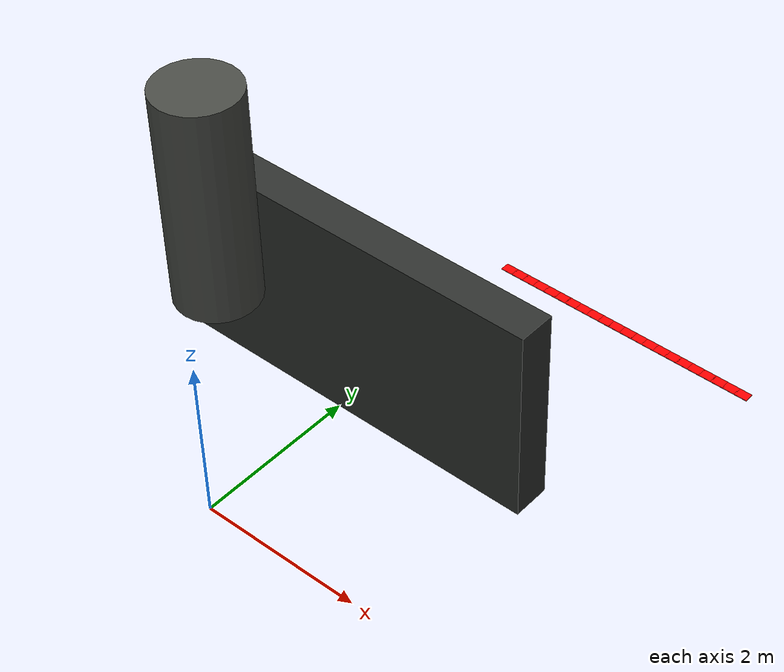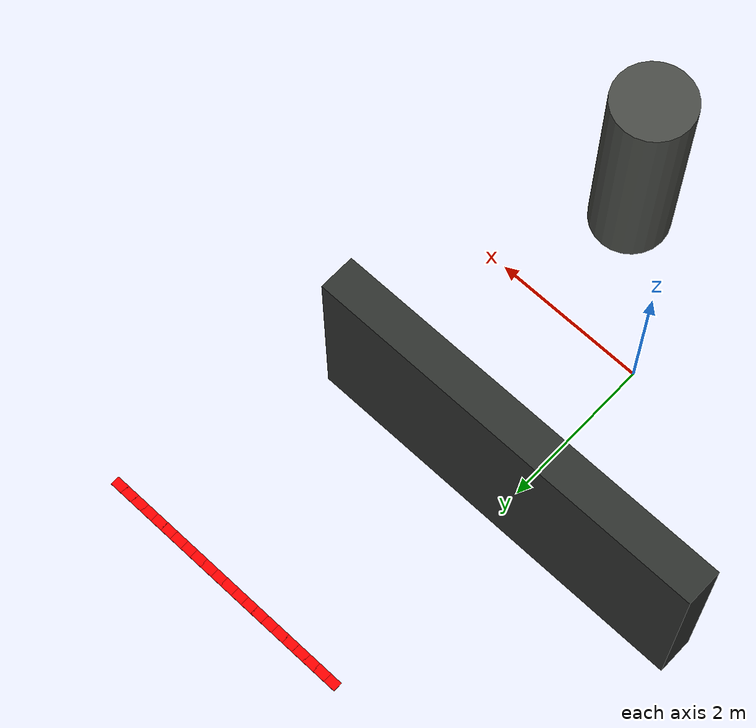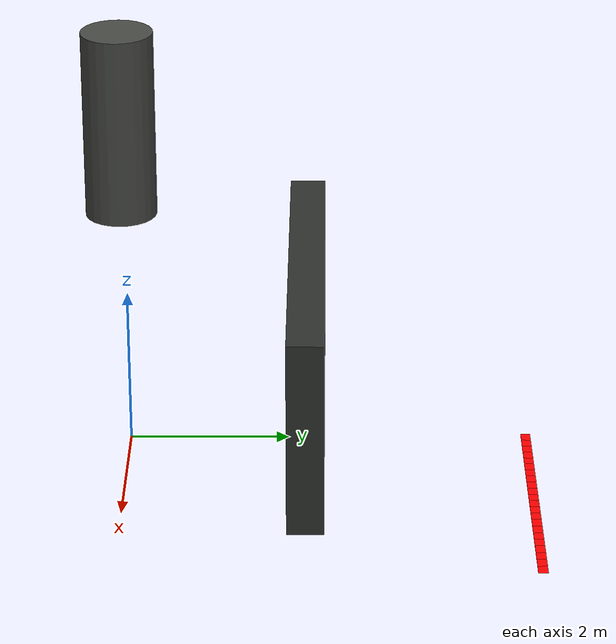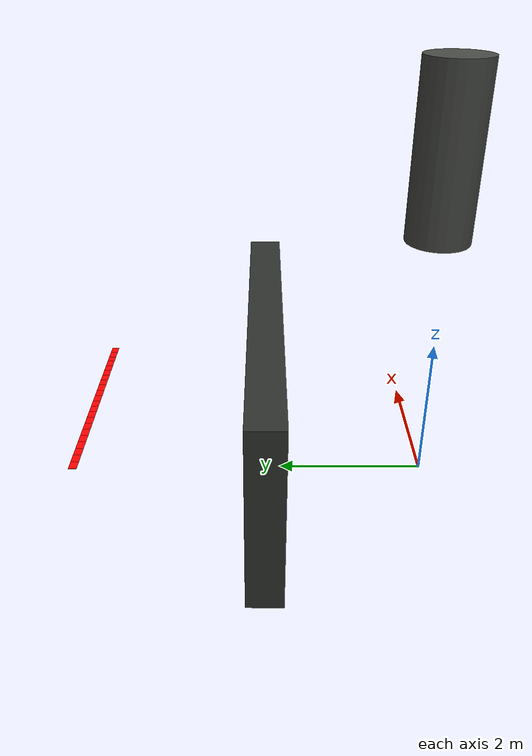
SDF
<sdf version="1.6">
 <world name="transformer_world">
  <model name="radiator_left">
   <static>true</static>
   <pose>0.0 2.225 1.2398399999999998 0 0 0</pose>
   <link name="link">
    <collision name="collision">
     <geometry><box><size>5.04 0.45 2.4796799999999997</size></box></geometry>
    </collision>
    <visual name="visual">
     <geometry><box><size>5.04 0.45 2.4796799999999997</size></box></geometry>
     <material><ambient>0.18 0.19 0.18 1</ambient><diffuse>0.18 0.19 0.18 1</diffuse></material>
    </visual>
   </link>
  </model>
  <model name="conservator_tank">
   <static>true</static>
   <pose>0.5 0.0 4.45 0 0 0</pose>
   <link name="link">
    <collision name="collision">
     <geometry><cylinder><radius>0.43</radius><length>2.3</length></cylinder></geometry>
    </collision>
    <visual name="visual">
     <geometry><cylinder><radius>0.43</radius><length>2.3</length></cylinder></geometry>
     <material><ambient>0.28 0.29 0.27 1</ambient><diffuse>0.28 0.29 0.27 1</diffuse></material>
    </visual>
   </link>
  </model>
  <model name="path_top_12">
   <static>true</static>
   <pose>3.32239 5.00000 0.00300 0 0 3.14159</pose>
   <link name="link">
    <visual name="visual">
     <cast_shadows>false</cast_shadows>
     <geometry><box><size>0.16821 0.12000 0.00600</size></box></geometry>
     <material><ambient>1 0 0 1</ambient><diffuse>1 0 0 1</diffuse><emissive>0.35 0 0 1</emissive></material>
    </visual>
   </link>
  </model>
  <model name="path_top_13">
   <static>true</static>
   <pose>3.16418 5.00000 0.00300 0 0 3.14159</pose>
   <link name="link">
    <visual name="visual">
     <cast_shadows>false</cast_shadows>
     <geometry><box><size>0.16821 0.12000 0.00600</size></box></geometry>
     <material><ambient>1 0 0 1</ambient><diffuse>1 0 0 1</diffuse><emissive>0.35 0 0 1</emissive></material>
    </visual>
   </link>
  </model>
  <model name="path_top_14">
   <static>true</static>
   <pose>3.00597 5.00000 0.00300 0 0 3.14159</pose>
   <link name="link">
    <visual name="visual">
     <cast_shadows>false</cast_shadows>
     <geometry><box><size>0.16821 0.12000 0.00600</size></box></geometry>
     <material><ambient>1 0 0 1</ambient><diffuse>1 0 0 1</diffuse><emissive>0.35 0 0 1</emissive></material>
    </visual>
   </link>
  </model>
  <model name="path_top_15">
   <static>true</static>
   <pose>2.84776 5.00000 0.00300 0 0 3.14159</pose>
   <link name="link">
    <visual name="visual">
     <cast_shadows>false</cast_shadows>
     <geometry><box><size>0.16821 0.12000 0.00600</size></box></geometry>
     <material><ambient>1 0 0 1</ambient><diffuse>1 0 0 1</diffuse><emissive>0.35 0 0 1</emissive></material>
    </visual>
   </link>
  </model>
  <model name="path_top_16">
   <static>true</static>
   <pose>2.68955 5.00000 0.00300 0 0 3.14159</pose>
   <link name="link">
    <visual name="visual">
     <cast_shadows>false</cast_shadows>
     <geometry><box><size>0.16821 0.12000 0.00600</size></box></geometry>
     <material><ambient>1 0 0 1</ambient><diffuse>1 0 0 1</diffuse><emissive>0.35 0 0 1</emissive></material>
    </visual>
   </link>
  </model>
  <model name="path_top_17">
   <static>true</static>
   <pose>2.53134 5.00000 0.00300 0 0 3.14159</pose>
   <link name="link">
    <visual name="visual">
     <cast_shadows>false</cast_shadows>
     <geometry><box><size>0.16821 0.12000 0.00600</size></box></geometry>
     <material><ambient>1 0 0 1</ambient><diffuse>1 0 0 1</diffuse><emissive>0.35 0 0 1</emissive></material>
    </visual>
   </link>
  </model>
  <model name="path_top_18">
   <static>true</static>
   <pose>2.37313 5.00000 0.00300 0 0 3.14159</pose>
   <link name="link">
    <visual name="visual">
     <cast_shadows>false</cast_shadows>
     <geometry><box><size>0.16821 0.12000 0.00600</size></box></geometry>
     <material><ambient>1 0 0 1</ambient><diffuse>1 0 0 1</diffuse><emissive>0.35 0 0 1</emissive></material>
    </visual>
   </link>
  </model>
  <model name="path_top_19">
   <static>true</static>
   <pose>2.21493 5.00000 0.00300 0 0 3.14159</pose>
   <link name="link">
    <visual name="visual">
     <cast_shadows>false</cast_shadows>
     <geometry><box><size>0.16821 0.12000 0.00600</size></box></geometry>
     <material><ambient>1 0 0 1</ambient><diffuse>1 0 0 1</diffuse><emissive>0.35 0 0 1</emissive></material>
    </visual>
   </link>
  </model>
  <model name="path_top_20">
   <static>true</static>
   <pose>2.05672 5.00000 0.00300 0 0 3.14159</pose>
   <link name="link">
    <visual name="visual">
     <cast_shadows>false</cast_shadows>
     <geometry><box><size>0.16821 0.12000 0.00600</size></box></geometry>
     <material><ambient>1 0 0 1</ambient><diffuse>1 0 0 1</diffuse><emissive>0.35 0 0 1</emissive></material>
    </visual>
   </link>
  </model>
  <model name="path_top_21">
   <static>true</static>
   <pose>1.89851 5.00000 0.00300 0 0 3.14159</pose>
   <link name="link">
    <visual name="visual">
     <cast_shadows>false</cast_shadows>
     <geometry><box><size>0.16821 0.12000 0.00600</size></box></geometry>
     <material><ambient>1 0 0 1</ambient><diffuse>1 0 0 1</diffuse><emissive>0.35 0 0 1</emissive></material>
    </visual>
   </link>
  </model>
  <model name="path_top_22">
   <static>true</static>
   <pose>1.74030 5.00000 0.00300 0 0 3.14159</pose>
   <link name="link">
    <visual name="visual">
     <cast_shadows>false</cast_shadows>
     <geometry><box><size>0.16821 0.12000 0.00600</size></box></geometry>
     <material><ambient>1 0 0 1</ambient><diffuse>1 0 0 1</diffuse><emissive>0.35 0 0 1</emissive></material>
    </visual>
   </link>
  </model>
  <model name="path_top_23">
   <static>true</static>
   <pose>1.58209 5.00000 0.00300 0 0 3.14159</pose>
   <link name="link">
    <visual name="visual">
     <cast_shadows>false</cast_shadows>
     <geometry><box><size>0.16821 0.12000 0.00600</size></box></geometry>
     <material><ambient>1 0 0 1</ambient><diffuse>1 0 0 1</diffuse><emissive>0.35 0 0 1</emissive></material>
    </visual>
   </link>
  </model>
  <model name="path_top_24">
   <static>true</static>
   <pose>1.42388 5.00000 0.00300 0 0 3.14159</pose>
   <link name="link">
    <visual name="visual">
     <cast_shadows>false</cast_shadows>
     <geometry><box><size>0.16821 0.12000 0.00600</size></box></geometry>
     <material><ambient>1 0 0 1</ambient><diffuse>1 0 0 1</diffuse><emissive>0.35 0 0 1</emissive></material>
    </visual>
   </link>
  </model>
  <model name="path_top_25">
   <static>true</static>
   <pose>1.26567 5.00000 0.00300 0 0 3.14159</pose>
   <link name="link">
    <visual name="visual">
     <cast_shadows>false</cast_shadows>
     <geometry><box><size>0.16821 0.12000 0.00600</size></box></geometry>
     <material><ambient>1 0 0 1</ambient><diffuse>1 0 0 1</diffuse><emissive>0.35 0 0 1</emissive></material>
    </visual>
   </link>
  </model>
  <model name="path_top_26">
   <static>true</static>
   <pose>1.10746 5.00000 0.00300 0 0 3.14159</pose>
   <link name="link">
    <visual name="visual">
     <cast_shadows>false</cast_shadows>
     <geometry><box><size>0.16821 0.12000 0.00600</size></box></geometry>
     <material><ambient>1 0 0 1</ambient><diffuse>1 0 0 1</diffuse><emissive>0.35 0 0 1</emissive></material>
    </visual>
   </link>
  </model>
  <model name="path_top_27">
   <static>true</static>
   <pose>0.94925 5.00000 0.00300 0 0 3.14159</pose>
   <link name="link">
    <visual name="visual">
     <cast_shadows>false</cast_shadows>
     <geometry><box><size>0.16821 0.12000 0.00600</size></box></geometry>
     <material><ambient>1 0 0 1</ambient><diffuse>1 0 0 1</diffuse><emissive>0.35 0 0 1</emissive></material>
    </visual>
   </link>
  </model>
  <model name="path_top_28">
   <static>true</static>
   <pose>0.79104 5.00000 0.00300 0 0 3.14159</pose>
   <link name="link">
    <visual name="visual">
     <cast_shadows>false</cast_shadows>
     <geometry><box><size>0.16821 0.12000 0.00600</size></box></geometry>
     <material><ambient>1 0 0 1</ambient><diffuse>1 0 0 1</diffuse><emissive>0.35 0 0 1</emissive></material>
    </visual>
   </link>
  </model>
  <model name="path_top_29">
   <static>true</static>
   <pose>0.63284 5.00000 0.00300 0 0 3.14159</pose>
   <link name="link">
    <visual name="visual">
     <cast_shadows>false</cast_shadows>
     <geometry><box><size>0.16821 0.12000 0.00600</size></box></geometry>
     <material><ambient>1 0 0 1</ambient><diffuse>1 0 0 1</diffuse><emissive>0.35 0 0 1</emissive></material>
    </visual>
   </link>
  </model>
  <model name="path_top_30">
   <static>true</static>
   <pose>0.47463 5.00000 0.00300 0 0 3.14159</pose>
   <link name="link">
    <visual name="visual">
     <cast_shadows>false</cast_shadows>
     <geometry><box><size>0.16821 0.12000 0.00600</size></box></geometry>
     <material><ambient>1 0 0 1</ambient><diffuse>1 0 0 1</diffuse><emissive>0.35 0 0 1</emissive></material>
    </visual>
   </link>
  </model>
  <model name="path_top_31">
   <static>true</static>
   <pose>0.31642 5.00000 0.00300 0 0 3.14159</pose>
   <link name="link">
    <visual name="visual">
     <cast_shadows>false</cast_shadows>
     <geometry><box><size>0.16821 0.12000 0.00600</size></box></geometry>
     <material><ambient>1 0 0 1</ambient><diffuse>1 0 0 1</diffuse><emissive>0.35 0 0 1</emissive></material>
    </visual>
   </link>
  </model>
  <model name="path_top_32">
   <static>true</static>
   <pose>0.15821 5.00000 0.00300 0 0 3.14159</pose>
   <link name="link">
    <visual name="visual">
     <cast_shadows>false</cast_shadows>
     <geometry><box><size>0.16821 0.12000 0.00600</size></box></geometry>
     <material><ambient>1 0 0 1</ambient><diffuse>1 0 0 1</diffuse><emissive>0.35 0 0 1</emissive></material>
    </visual>
   </link>
  </model>
  <model name="path_top_33">
   <static>true</static>
   <pose>0.00000 5.00000 0.00300 0 0 3.14159</pose>
   <link name="link">
    <visual name="visual">
     <cast_shadows>false</cast_shadows>
     <geometry><box><size>0.16821 0.12000 0.00600</size></box></geometry>
     <material><ambient>1 0 0 1</ambient><diffuse>1 0 0 1</diffuse><emissive>0.35 0 0 1</emissive></material>
    </visual>
   </link>
  </model>
 </world>
</sdf>
